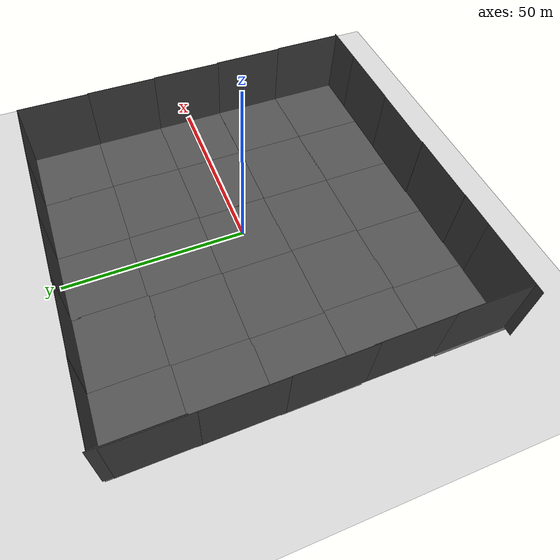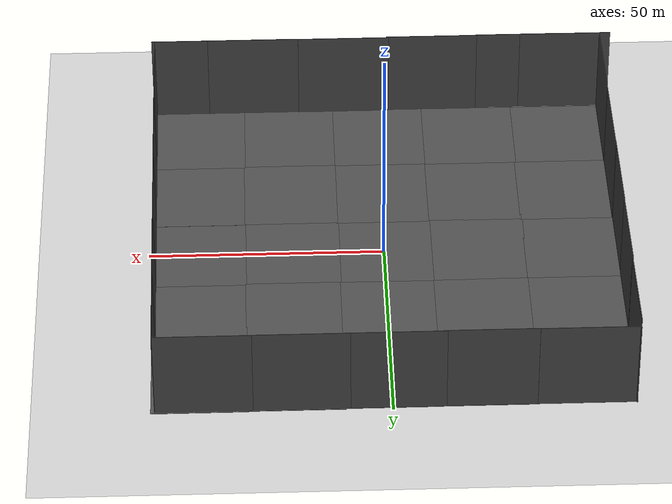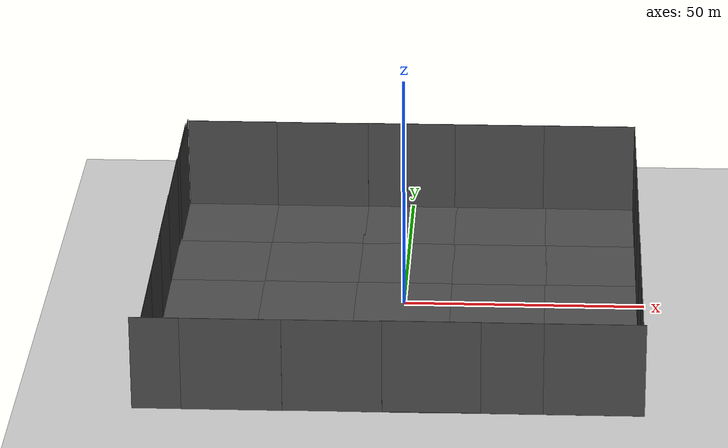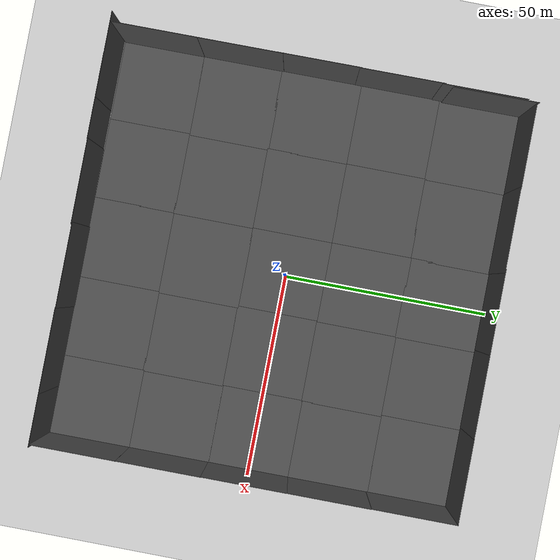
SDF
<sdf version="1.6">
 <world name="default">
  <light name="sun" type="directional">
   <pose>0 0 10000 0 -0 0</pose>
   <diffuse>0.8 0.8 0.8 1</diffuse>
   <specular>0.2 0.2 0.2 1</specular>
   <attenuation>
    <range>1000</range>
    <constant>0.9</constant>
    <linear>0.01</linear>
    <quadratic>0.001</quadratic>
   </attenuation>
   <direction>-0.5 0.1 -0.9</direction>
  </light>
  <model name="ground_plane">
   <static>1</static>
   <link name="link">
    <collision name="collision">
     <geometry><plane><normal>0 0 1</normal><size>100 100</size></plane></geometry>
     <surface><friction><ode><mu>100</mu><mu2>50</mu2></ode></friction></surface>
    </collision>
    <visual name="visual">
     <cast_shadows>0</cast_shadows>
     <geometry><plane><normal>0 0 1</normal><size>100 100</size></plane></geometry>
     <material>
      <script><uri>file://media/materials/scripts/gazebo.material</uri><name>Gazebo/Grey</name></script>
     </material>
    </visual>
   </link>
  </model>
  <gravity>0 0 -9.8</gravity>
  <magnetic_field>6e-06 2.3e-05 -4.2e-05</magnetic_field>
  <atmosphere type="adiabatic"/>
  <physics name="default_physics" default="0" type="ode">
   <max_step_size>0.001</max_step_size>
   <real_time_factor>1</real_time_factor>
   <real_time_update_rate>1000</real_time_update_rate>
  </physics>
  <scene><ambient>0.4 0.4 0.4 1</ambient><background>0.7 0.7 0.7 1</background><shadows>1</shadows></scene>
  <audio><device>default</device></audio>
  <spherical_coordinates>
   <surface_model>EARTH_WGS84</surface_model>
   <latitude_deg>0</latitude_deg>
   <longitude_deg>0</longitude_deg>
   <elevation>0</elevation>
   <heading_deg>0</heading_deg>
  </spherical_coordinates>
  <model name="asphalt_plane_clone_0">
   <static>1</static>
   <link name="link">
    <collision name="collision"><geometry><box><size>20 20 0.1</size></box></geometry></collision>
    <visual name="visual">
     <cast_shadows>0</cast_shadows>
     <geometry><box><size>20 20 0.1</size></box></geometry>
     <material>
      <script>
       <uri>model://asphalt_plane/materials/scripts</uri>
       <uri>model://asphalt_plane/materials/textures</uri>
       <name>vrc/asphalt</name>
      </script>
     </material>
    </visual>
   </link>
   <pose>-0.282441 39.4715 0 0 -0 0</pose>
  </model>
  <model name="asphalt_plane_clone_2">
   <static>1</static>
   <link name="link">
    <collision name="collision"><geometry><box><size>20 20 0.1</size></box></geometry></collision>
    <visual name="visual">
     <cast_shadows>0</cast_shadows>
     <geometry><box><size>20 20 0.1</size></box></geometry>
     <material>
      <script>
       <uri>model://asphalt_plane/materials/scripts</uri>
       <uri>model://asphalt_plane/materials/textures</uri>
       <name>vrc/asphalt</name>
      </script>
     </material>
    </visual>
   </link>
   <pose>-0.375855 -39.9407 0 0 -0 0</pose>
  </model>
  <model name="asphalt_plane_clone_2_clone">
   <static>1</static>
   <link name="link">
    <collision name="collision"><geometry><box><size>20 20 0.1</size></box></geometry></collision>
    <visual name="visual">
     <cast_shadows>0</cast_shadows>
     <geometry><box><size>20 20 0.1</size></box></geometry>
     <material>
      <script>
       <uri>model://asphalt_plane/materials/scripts</uri>
       <uri>model://asphalt_plane/materials/textures</uri>
       <name>vrc/asphalt</name>
      </script>
     </material>
    </visual>
   </link>
   <pose>-20.1781 -39.8377 0 0 -0 0</pose>
  </model>
  <model name="asphalt_plane_clone_2_clone_0">
   <static>1</static>
   <link name="link">
    <collision name="collision"><geometry><box><size>20 20 0.1</size></box></geometry></collision>
    <visual name="visual">
     <cast_shadows>0</cast_shadows>
     <geometry><box><size>20 20 0.1</size></box></geometry>
     <material>
      <script>
       <uri>model://asphalt_plane/materials/scripts</uri>
       <uri>model://asphalt_plane/materials/textures</uri>
       <name>vrc/asphalt</name>
      </script>
     </material>
    </visual>
   </link>
   <pose>-40.1007 -39.8 0 0 -0 0</pose>
  </model>
  <model name="asphalt_plane_clone_2_clone_1">
   <static>1</static>
   <link name="link">
    <collision name="collision"><geometry><box><size>20 20 0.1</size></box></geometry></collision>
    <visual name="visual">
     <cast_shadows>0</cast_shadows>
     <geometry><box><size>20 20 0.1</size></box></geometry>
     <material>
      <script>
       <uri>model://asphalt_plane/materials/scripts</uri>
       <uri>model://asphalt_plane/materials/textures</uri>
       <name>vrc/asphalt</name>
      </script>
     </material>
    </visual>
   </link>
   <pose>-20.0758 -20.1124 0 0 -0 0</pose>
  </model>
  <model name="asphalt_plane_clone_2_clone_2">
   <static>1</static>
   <link name="link">
    <collision name="collision"><geometry><box><size>20 20 0.1</size></box></geometry></collision>
    <visual name="visual">
     <cast_shadows>0</cast_shadows>
     <geometry><box><size>20 20 0.1</size></box></geometry>
     <material>
      <script>
       <uri>model://asphalt_plane/materials/scripts</uri>
       <uri>model://asphalt_plane/materials/textures</uri>
       <name>vrc/asphalt</name>
      </script>
     </material>
    </visual>
   </link>
   <pose>-39.8234 -19.9189 0 0 -0 0</pose>
  </model>
  <model name="asphalt_plane_clone_2_clone_3">
   <static>1</static>
   <link name="link">
    <collision name="collision"><geometry><box><size>20 20 0.1</size></box></geometry></collision>
    <visual name="visual">
     <cast_shadows>0</cast_shadows>
     <geometry><box><size>20 20 0.1</size></box></geometry>
     <material>
      <script>
       <uri>model://asphalt_plane/materials/scripts</uri>
       <uri>model://asphalt_plane/materials/textures</uri>
       <name>vrc/asphalt</name>
      </script>
     </material>
    </visual>
   </link>
   <pose>-40.0241 -0.322205 0 0 -0 0</pose>
  </model>
  <model name="asphalt_plane_clone_2_clone_4">
   <static>1</static>
   <link name="link">
    <collision name="collision"><geometry><box><size>20 20 0.1</size></box></geometry></collision>
    <visual name="visual">
     <cast_shadows>0</cast_shadows>
     <geometry><box><size>20 20 0.1</size></box></geometry>
     <material>
      <script>
       <uri>model://asphalt_plane/materials/scripts</uri>
       <uri>model://asphalt_plane/materials/textures</uri>
       <name>vrc/asphalt</name>
      </script>
     </material>
    </visual>
   </link>
   <pose>-20.2501 -0.22602 0 0 -0 0</pose>
  </model>
  <model name="asphalt_plane_clone_2_clone_5">
   <static>1</static>
   <link name="link">
    <collision name="collision"><geometry><box><size>20 20 0.1</size></box></geometry></collision>
    <visual name="visual">
     <cast_shadows>0</cast_shadows>
     <geometry><box><size>20 20 0.1</size></box></geometry>
     <material>
      <script>
       <uri>model://asphalt_plane/materials/scripts</uri>
       <uri>model://asphalt_plane/materials/textures</uri>
       <name>vrc/asphalt</name>
      </script>
     </material>
    </visual>
   </link>
   <pose>-20.1297 19.6688 0 0 -0 0</pose>
  </model>
  <model name="asphalt_plane_clone_2_clone_6">
   <static>1</static>
   <link name="link">
    <collision name="collision"><geometry><box><size>20 20 0.1</size></box></geometry></collision>
    <visual name="visual">
     <cast_shadows>0</cast_shadows>
     <geometry><box><size>20 20 0.1</size></box></geometry>
     <material>
      <script>
       <uri>model://asphalt_plane/materials/scripts</uri>
       <uri>model://asphalt_plane/materials/textures</uri>
       <name>vrc/asphalt</name>
      </script>
     </material>
    </visual>
   </link>
   <pose>-39.9185 19.4311 0 0 -0 0</pose>
  </model>
  <model name="asphalt_plane_clone_2_clone_7">
   <static>1</static>
   <link name="link">
    <collision name="collision"><geometry><box><size>20 20 0.1</size></box></geometry></collision>
    <visual name="visual">
     <cast_shadows>0</cast_shadows>
     <geometry><box><size>20 20 0.1</size></box></geometry>
     <material>
      <script>
       <uri>model://asphalt_plane/materials/scripts</uri>
       <uri>model://asphalt_plane/materials/textures</uri>
       <name>vrc/asphalt</name>
      </script>
     </material>
    </visual>
   </link>
   <pose>-39.8198 39.3396 0 0 -0 0</pose>
  </model>
  <model name="asphalt_plane_clone_2_clone_8">
   <static>1</static>
   <link name="link">
    <collision name="collision"><geometry><box><size>20 20 0.1</size></box></geometry></collision>
    <visual name="visual">
     <cast_shadows>0</cast_shadows>
     <geometry><box><size>20 20 0.1</size></box></geometry>
     <material>
      <script>
       <uri>model://asphalt_plane/materials/scripts</uri>
       <uri>model://asphalt_plane/materials/textures</uri>
       <name>vrc/asphalt</name>
      </script>
     </material>
    </visual>
   </link>
   <pose>-19.8747 39.4184 0 0 -0 0</pose>
  </model>
  <model name="asphalt_plane_clone_2_clone_9">
   <static>1</static>
   <link name="link">
    <collision name="collision"><geometry><box><size>20 20 0.1</size></box></geometry></collision>
    <visual name="visual">
     <cast_shadows>0</cast_shadows>
     <geometry><box><size>20 20 0.1</size></box></geometry>
     <material>
      <script>
       <uri>model://asphalt_plane/materials/scripts</uri>
       <uri>model://asphalt_plane/materials/textures</uri>
       <name>vrc/asphalt</name>
      </script>
     </material>
    </visual>
   </link>
   <pose>19.5852 -39.835 0 0 -0 0</pose>
  </model>
  <model name="asphalt_plane_clone_2_clone_10">
   <static>1</static>
   <link name="link">
    <collision name="collision"><geometry><box><size>20 20 0.1</size></box></geometry></collision>
    <visual name="visual">
     <cast_shadows>0</cast_shadows>
     <geometry><box><size>20 20 0.1</size></box></geometry>
     <material>
      <script>
       <uri>model://asphalt_plane/materials/scripts</uri>
       <uri>model://asphalt_plane/materials/textures</uri>
       <name>vrc/asphalt</name>
      </script>
     </material>
    </visual>
   </link>
   <pose>19.5555 -20.104 0 0 -0 0</pose>
  </model>
  <model name="asphalt_plane_clone_2_clone_11">
   <static>1</static>
   <link name="link">
    <collision name="collision"><geometry><box><size>20 20 0.1</size></box></geometry></collision>
    <visual name="visual">
     <cast_shadows>0</cast_shadows>
     <geometry><box><size>20 20 0.1</size></box></geometry>
     <material>
      <script>
       <uri>model://asphalt_plane/materials/scripts</uri>
       <uri>model://asphalt_plane/materials/textures</uri>
       <name>vrc/asphalt</name>
      </script>
     </material>
    </visual>
   </link>
   <pose>19.3785 -0.183989 0 0 -0 0</pose>
  </model>
  <model name="asphalt_plane_clone_2_clone_12">
   <static>1</static>
   <link name="link">
    <collision name="collision"><geometry><box><size>20 20 0.1</size></box></geometry></collision>
    <visual name="visual">
     <cast_shadows>0</cast_shadows>
     <geometry><box><size>20 20 0.1</size></box></geometry>
     <material>
      <script>
       <uri>model://asphalt_plane/materials/scripts</uri>
       <uri>model://asphalt_plane/materials/textures</uri>
       <name>vrc/asphalt</name>
      </script>
     </material>
    </visual>
   </link>
   <pose>19.5867 19.6998 0 0 -0 0</pose>
  </model>
  <model name="asphalt_plane_clone_2_clone_13">
   <static>1</static>
   <link name="link">
    <collision name="collision"><geometry><box><size>20 20 0.1</size></box></geometry></collision>
    <visual name="visual">
     <cast_shadows>0</cast_shadows>
     <geometry><box><size>20 20 0.1</size></box></geometry>
     <material>
      <script>
       <uri>model://asphalt_plane/materials/scripts</uri>
       <uri>model://asphalt_plane/materials/textures</uri>
       <name>vrc/asphalt</name>
      </script>
     </material>
    </visual>
   </link>
   <pose>19.4679 39.6646 0 0 -0 0</pose>
  </model>
  <model name="asphalt_plane_clone_2_clone_14">
   <static>1</static>
   <link name="link">
    <collision name="collision"><geometry><box><size>20 20 0.1</size></box></geometry></collision>
    <visual name="visual">
     <cast_shadows>0</cast_shadows>
     <geometry><box><size>20 20 0.1</size></box></geometry>
     <material>
      <script>
       <uri>model://asphalt_plane/materials/scripts</uri>
       <uri>model://asphalt_plane/materials/textures</uri>
       <name>vrc/asphalt</name>
      </script>
     </material>
    </visual>
   </link>
   <pose>39.1794 39.7774 0 0 -0 0</pose>
  </model>
  <model name="asphalt_plane_clone_2_clone_15">
   <static>1</static>
   <link name="link">
    <collision name="collision"><geometry><box><size>20 20 0.1</size></box></geometry></collision>
    <visual name="visual">
     <cast_shadows>0</cast_shadows>
     <geometry><box><size>20 20 0.1</size></box></geometry>
     <material>
      <script>
       <uri>model://asphalt_plane/materials/scripts</uri>
       <uri>model://asphalt_plane/materials/textures</uri>
       <name>vrc/asphalt</name>
      </script>
     </material>
    </visual>
   </link>
   <pose>39.402 19.8994 0 0 -0 0</pose>
  </model>
  <model name="asphalt_plane_clone_2_clone_16">
   <static>1</static>
   <link name="link">
    <collision name="collision"><geometry><box><size>20 20 0.1</size></box></geometry></collision>
    <visual name="visual">
     <cast_shadows>0</cast_shadows>
     <geometry><box><size>20 20 0.1</size></box></geometry>
     <material>
      <script>
       <uri>model://asphalt_plane/materials/scripts</uri>
       <uri>model://asphalt_plane/materials/textures</uri>
       <name>vrc/asphalt</name>
      </script>
     </material>
    </visual>
   </link>
   <pose>39.307 0.067788 0 0 -0 0</pose>
  </model>
  <model name="asphalt_plane_clone_2_clone_17">
   <static>1</static>
   <link name="link">
    <collision name="collision"><geometry><box><size>20 20 0.1</size></box></geometry></collision>
    <visual name="visual">
     <cast_shadows>0</cast_shadows>
     <geometry><box><size>20 20 0.1</size></box></geometry>
     <material>
      <script>
       <uri>model://asphalt_plane/materials/scripts</uri>
       <uri>model://asphalt_plane/materials/textures</uri>
       <name>vrc/asphalt</name>
      </script>
     </material>
    </visual>
   </link>
   <pose>39.3062 -19.9491 0 0 -0 0</pose>
  </model>
  <model name="asphalt_plane_clone_2_clone_18">
   <static>1</static>
   <link name="link">
    <collision name="collision"><geometry><box><size>20 20 0.1</size></box></geometry></collision>
    <visual name="visual">
     <cast_shadows>0</cast_shadows>
     <geometry><box><size>20 20 0.1</size></box></geometry>
     <material>
      <script>
       <uri>model://asphalt_plane/materials/scripts</uri>
       <uri>model://asphalt_plane/materials/textures</uri>
       <name>vrc/asphalt</name>
      </script>
     </material>
    </visual>
   </link>
   <pose>39.3188 -39.8411 0 0 -0 0</pose>
  </model>
  <plugin name="collision_map_creator" filename="libcollision_map_creator.so"/>
  <model name="asphalt_plane">
   <static>1</static>
   <link name="link">
    <collision name="collision"><geometry><box><size>20 20 0.1</size></box></geometry></collision>
    <visual name="visual">
     <cast_shadows>0</cast_shadows>
     <geometry><box><size>20 20 0.1</size></box></geometry>
     <material>
      <script>
       <uri>model://asphalt_plane/materials/scripts</uri>
       <uri>model://asphalt_plane/materials/textures</uri>
       <name>vrc/asphalt</name>
      </script>
     </material>
    </visual>
   </link>
   <pose>-0.302274 -0.132083 0 0 -0 0</pose>
  </model>
  <model name="asphalt_plane_0">
   <static>1</static>
   <link name="link">
    <collision name="collision"><geometry><box><size>20 20 0.1</size></box></geometry></collision>
    <visual name="visual">
     <cast_shadows>0</cast_shadows>
     <geometry><box><size>20 20 0.1</size></box></geometry>
     <material>
      <script>
       <uri>model://asphalt_plane/materials/scripts</uri>
       <uri>model://asphalt_plane/materials/textures</uri>
       <name>vrc/asphalt</name>
      </script>
     </material>
    </visual>
   </link>
   <pose>-0.27586 19.8027 0 0 -0 0</pose>
  </model>
  <model name="asphalt_plane_1">
   <static>1</static>
   <link name="link">
    <collision name="collision"><geometry><box><size>20 20 0.1</size></box></geometry></collision>
    <visual name="visual">
     <cast_shadows>0</cast_shadows>
     <geometry><box><size>20 20 0.1</size></box></geometry>
     <material>
      <script>
       <uri>model://asphalt_plane/materials/scripts</uri>
       <uri>model://asphalt_plane/materials/textures</uri>
       <name>vrc/asphalt</name>
      </script>
     </material>
    </visual>
   </link>
   <pose>-0.084848 -19.9503 0 0 -0 0</pose>
  </model>
  <model name="asphalt_plane_2">
   <static>1</static>
   <link name="link">
    <collision name="collision"><geometry><box><size>20 20 0.1</size></box></geometry></collision>
    <visual name="visual">
     <cast_shadows>0</cast_shadows>
     <geometry><box><size>20 20 0.1</size></box></geometry>
     <material>
      <script>
       <uri>model://asphalt_plane/materials/scripts</uri>
       <uri>model://asphalt_plane/materials/textures</uri>
       <name>vrc/asphalt</name>
      </script>
     </material>
    </visual>
   </link>
   <pose>-12.3513 -50.029 9.98458 -1.56004 0 0</pose>
  </model>
  <model name="asphalt_plane_2_clone">
   <static>1</static>
   <link name="link">
    <collision name="collision"><geometry><box><size>20 20 0.1</size></box></geometry></collision>
    <visual name="visual">
     <cast_shadows>0</cast_shadows>
     <geometry><box><size>20 20 0.1</size></box></geometry>
     <material>
      <script>
       <uri>model://asphalt_plane/materials/scripts</uri>
       <uri>model://asphalt_plane/materials/textures</uri>
       <name>vrc/asphalt</name>
      </script>
     </material>
    </visual>
   </link>
   <pose>7.1443 -49.8263 9.98458 -1.56004 0 0</pose>
  </model>
  <model name="asphalt_plane_2_clone_0">
   <static>1</static>
   <link name="link">
    <collision name="collision"><geometry><box><size>20 20 0.1</size></box></geometry></collision>
    <visual name="visual">
     <cast_shadows>0</cast_shadows>
     <geometry><box><size>20 20 0.1</size></box></geometry>
     <material>
      <script>
       <uri>model://asphalt_plane/materials/scripts</uri>
       <uri>model://asphalt_plane/materials/textures</uri>
       <name>vrc/asphalt</name>
      </script>
     </material>
    </visual>
   </link>
   <pose>27.071 -49.9158 9.98458 -1.56004 0 0</pose>
  </model>
  <model name="asphalt_plane_2_clone_1">
   <static>1</static>
   <link name="link">
    <collision name="collision"><geometry><box><size>20 20 0.1</size></box></geometry></collision>
    <visual name="visual">
     <cast_shadows>0</cast_shadows>
     <geometry><box><size>20 20 0.1</size></box></geometry>
     <material>
      <script>
       <uri>model://asphalt_plane/materials/scripts</uri>
       <uri>model://asphalt_plane/materials/textures</uri>
       <name>vrc/asphalt</name>
      </script>
     </material>
    </visual>
   </link>
   <pose>39.3994 -49.9205 9.98458 -1.56004 0 0</pose>
  </model>
  <model name="asphalt_plane_2_clone_2">
   <static>1</static>
   <link name="link">
    <collision name="collision"><geometry><box><size>20 20 0.1</size></box></geometry></collision>
    <visual name="visual">
     <cast_shadows>0</cast_shadows>
     <geometry><box><size>20 20 0.1</size></box></geometry>
     <material>
      <script>
       <uri>model://asphalt_plane/materials/scripts</uri>
       <uri>model://asphalt_plane/materials/textures</uri>
       <name>vrc/asphalt</name>
      </script>
     </material>
    </visual>
   </link>
   <pose>-32.0934 -50.1247 9.98458 -1.56004 0 0</pose>
  </model>
  <model name="asphalt_plane_2_clone_3">
   <static>1</static>
   <link name="link">
    <collision name="collision"><geometry><box><size>20 20 0.1</size></box></geometry></collision>
    <visual name="visual">
     <cast_shadows>0</cast_shadows>
     <geometry><box><size>20 20 0.1</size></box></geometry>
     <material>
      <script>
       <uri>model://asphalt_plane/materials/scripts</uri>
       <uri>model://asphalt_plane/materials/textures</uri>
       <name>vrc/asphalt</name>
      </script>
     </material>
    </visual>
   </link>
   <pose>-41.9076 -50.0904 9.98458 -1.56004 0 0</pose>
  </model>
  <model name="asphalt_plane_2_clone_4">
   <static>1</static>
   <link name="link">
    <collision name="collision"><geometry><box><size>20 20 0.1</size></box></geometry></collision>
    <visual name="visual">
     <cast_shadows>0</cast_shadows>
     <geometry><box><size>20 20 0.1</size></box></geometry>
     <material>
      <script>
       <uri>model://asphalt_plane/materials/scripts</uri>
       <uri>model://asphalt_plane/materials/textures</uri>
       <name>vrc/asphalt</name>
      </script>
     </material>
    </visual>
   </link>
   <pose>-39.4031 49.1987 9.98458 -1.56004 0 0</pose>
  </model>
  <model name="asphalt_plane_2_clone_5">
   <static>1</static>
   <link name="link">
    <collision name="collision"><geometry><box><size>20 20 0.1</size></box></geometry></collision>
    <visual name="visual">
     <cast_shadows>0</cast_shadows>
     <geometry><box><size>20 20 0.1</size></box></geometry>
     <material>
      <script>
       <uri>model://asphalt_plane/materials/scripts</uri>
       <uri>model://asphalt_plane/materials/textures</uri>
       <name>vrc/asphalt</name>
      </script>
     </material>
    </visual>
   </link>
   <pose>-19.9737 49.1336 9.98458 -1.56004 0 0</pose>
  </model>
  <model name="asphalt_plane_2_clone_6">
   <static>1</static>
   <link name="link">
    <collision name="collision"><geometry><box><size>20 20 0.1</size></box></geometry></collision>
    <visual name="visual">
     <cast_shadows>0</cast_shadows>
     <geometry><box><size>20 20 0.1</size></box></geometry>
     <material>
      <script>
       <uri>model://asphalt_plane/materials/scripts</uri>
       <uri>model://asphalt_plane/materials/textures</uri>
       <name>vrc/asphalt</name>
      </script>
     </material>
    </visual>
   </link>
   <pose>-0.885263 49.257 9.98458 -1.56004 0 0</pose>
  </model>
  <model name="asphalt_plane_2_clone_7">
   <static>1</static>
   <link name="link">
    <collision name="collision"><geometry><box><size>20 20 0.1</size></box></geometry></collision>
    <visual name="visual">
     <cast_shadows>0</cast_shadows>
     <geometry><box><size>20 20 0.1</size></box></geometry>
     <material>
      <script>
       <uri>model://asphalt_plane/materials/scripts</uri>
       <uri>model://asphalt_plane/materials/textures</uri>
       <name>vrc/asphalt</name>
      </script>
     </material>
    </visual>
   </link>
   <pose>18.5742 49.2675 9.98458 -1.56004 0 0</pose>
  </model>
  <model name="asphalt_plane_2_clone_8">
   <static>1</static>
   <link name="link">
    <collision name="collision"><geometry><box><size>20 20 0.1</size></box></geometry></collision>
    <visual name="visual">
     <cast_shadows>0</cast_shadows>
     <geometry><box><size>20 20 0.1</size></box></geometry>
     <material>
      <script>
       <uri>model://asphalt_plane/materials/scripts</uri>
       <uri>model://asphalt_plane/materials/textures</uri>
       <name>vrc/asphalt</name>
      </script>
     </material>
    </visual>
   </link>
   <pose>38.348 49.3053 9.98458 -1.56004 0 0</pose>
  </model>
  <model name="asphalt_plane_2_clone_9">
   <static>1</static>
   <link name="link">
    <collision name="collision"><geometry><box><size>20 20 0.1</size></box></geometry></collision>
    <visual name="visual">
     <cast_shadows>0</cast_shadows>
     <geometry><box><size>20 20 0.1</size></box></geometry>
     <material>
      <script>
       <uri>model://asphalt_plane/materials/scripts</uri>
       <uri>model://asphalt_plane/materials/textures</uri>
       <name>vrc/asphalt</name>
      </script>
     </material>
    </visual>
   </link>
   <pose>48.3858 39.3566 9.98458 -1.57084 -0.010756 1.57451</pose>
  </model>
  <model name="asphalt_plane_2_clone_9_clone">
   <static>1</static>
   <link name="link">
    <collision name="collision"><geometry><box><size>20 20 0.1</size></box></geometry></collision>
    <visual name="visual">
     <cast_shadows>0</cast_shadows>
     <geometry><box><size>20 20 0.1</size></box></geometry>
     <material>
      <script>
       <uri>model://asphalt_plane/materials/scripts</uri>
       <uri>model://asphalt_plane/materials/textures</uri>
       <name>vrc/asphalt</name>
      </script>
     </material>
    </visual>
   </link>
   <pose>48.4852 19.515 9.98458 -1.57084 -0.010756 1.57451</pose>
  </model>
  <model name="asphalt_plane_2_clone_9_clone_0">
   <static>1</static>
   <link name="link">
    <collision name="collision"><geometry><box><size>20 20 0.1</size></box></geometry></collision>
    <visual name="visual">
     <cast_shadows>0</cast_shadows>
     <geometry><box><size>20 20 0.1</size></box></geometry>
     <material>
      <script>
       <uri>model://asphalt_plane/materials/scripts</uri>
       <uri>model://asphalt_plane/materials/textures</uri>
       <name>vrc/asphalt</name>
      </script>
     </material>
    </visual>
   </link>
   <pose>48.5476 -0.206756 9.98458 -1.57084 -0.010756 1.57451</pose>
  </model>
  <model name="asphalt_plane_2_clone_9_clone_1">
   <static>1</static>
   <link name="link">
    <collision name="collision"><geometry><box><size>20 20 0.1</size></box></geometry></collision>
    <visual name="visual">
     <cast_shadows>0</cast_shadows>
     <geometry><box><size>20 20 0.1</size></box></geometry>
     <material>
      <script>
       <uri>model://asphalt_plane/materials/scripts</uri>
       <uri>model://asphalt_plane/materials/textures</uri>
       <name>vrc/asphalt</name>
      </script>
     </material>
    </visual>
   </link>
   <pose>48.6424 -19.8839 9.98458 -1.57084 -0.010756 1.57451</pose>
  </model>
  <model name="asphalt_plane_2_clone_9_clone_2">
   <static>1</static>
   <link name="link">
    <collision name="collision"><geometry><box><size>20 20 0.1</size></box></geometry></collision>
    <visual name="visual">
     <cast_shadows>0</cast_shadows>
     <geometry><box><size>20 20 0.1</size></box></geometry>
     <material>
      <script>
       <uri>model://asphalt_plane/materials/scripts</uri>
       <uri>model://asphalt_plane/materials/textures</uri>
       <name>vrc/asphalt</name>
      </script>
     </material>
    </visual>
   </link>
   <pose>48.7094 -39.8988 9.98458 -1.57084 -0.010756 1.57451</pose>
  </model>
  <model name="asphalt_plane_2_clone_9_clone_3">
   <static>1</static>
   <link name="link">
    <collision name="collision"><geometry><box><size>20 20 0.1</size></box></geometry></collision>
    <visual name="visual">
     <cast_shadows>0</cast_shadows>
     <geometry><box><size>20 20 0.1</size></box></geometry>
     <material>
      <script>
       <uri>model://asphalt_plane/materials/scripts</uri>
       <uri>model://asphalt_plane/materials/textures</uri>
       <name>vrc/asphalt</name>
      </script>
     </material>
    </visual>
   </link>
   <pose>-49.5431 -39.8877 9.98458 -1.57084 -0.010756 1.57451</pose>
  </model>
  <model name="asphalt_plane_2_clone_9_clone_4">
   <static>1</static>
   <link name="link">
    <collision name="collision"><geometry><box><size>20 20 0.1</size></box></geometry></collision>
    <visual name="visual">
     <cast_shadows>0</cast_shadows>
     <geometry><box><size>20 20 0.1</size></box></geometry>
     <material>
      <script>
       <uri>model://asphalt_plane/materials/scripts</uri>
       <uri>model://asphalt_plane/materials/textures</uri>
       <name>vrc/asphalt</name>
      </script>
     </material>
    </visual>
   </link>
   <pose>-49.6574 -19.9459 9.98458 -1.57084 -0.010756 1.57451</pose>
  </model>
  <model name="asphalt_plane_2_clone_9_clone_5">
   <static>1</static>
   <link name="link">
    <collision name="collision"><geometry><box><size>20 20 0.1</size></box></geometry></collision>
    <visual name="visual">
     <cast_shadows>0</cast_shadows>
     <geometry><box><size>20 20 0.1</size></box></geometry>
     <material>
      <script>
       <uri>model://asphalt_plane/materials/scripts</uri>
       <uri>model://asphalt_plane/materials/textures</uri>
       <name>vrc/asphalt</name>
      </script>
     </material>
    </visual>
   </link>
   <pose>-49.7977 -1.63677 9.98458 -1.57084 -0.010756 1.57451</pose>
  </model>
  <model name="asphalt_plane_2_clone_9_clone_6">
   <static>1</static>
   <link name="link">
    <collision name="collision"><geometry><box><size>20 20 0.1</size></box></geometry></collision>
    <visual name="visual">
     <cast_shadows>0</cast_shadows>
     <geometry><box><size>20 20 0.1</size></box></geometry>
     <material>
      <script>
       <uri>model://asphalt_plane/materials/scripts</uri>
       <uri>model://asphalt_plane/materials/textures</uri>
       <name>vrc/asphalt</name>
      </script>
     </material>
    </visual>
   </link>
   <pose>-49.8378 17.9548 9.98458 -1.57084 -0.010756 1.57451</pose>
  </model>
  <model name="asphalt_plane_2_clone_9_clone_7">
   <static>1</static>
   <link name="link">
    <collision name="collision"><geometry><box><size>20 20 0.1</size></box></geometry></collision>
    <visual name="visual">
     <cast_shadows>0</cast_shadows>
     <geometry><box><size>20 20 0.1</size></box></geometry>
     <material>
      <script>
       <uri>model://asphalt_plane/materials/scripts</uri>
       <uri>model://asphalt_plane/materials/textures</uri>
       <name>vrc/asphalt</name>
      </script>
     </material>
    </visual>
   </link>
   <pose>-49.8151 37.2283 9.98458 -1.57084 -0.010756 1.57451</pose>
  </model>
  <model name="asphalt_plane_2_clone_9_clone_8">
   <static>1</static>
   <link name="link">
    <collision name="collision"><geometry><box><size>20 20 0.1</size></box></geometry></collision>
    <visual name="visual">
     <cast_shadows>0</cast_shadows>
     <geometry><box><size>20 20 0.1</size></box></geometry>
     <material>
      <script>
       <uri>model://asphalt_plane/materials/scripts</uri>
       <uri>model://asphalt_plane/materials/textures</uri>
       <name>vrc/asphalt</name>
      </script>
     </material>
    </visual>
   </link>
   <pose>-49.5386 39.7395 9.98458 -1.57084 -0.010756 1.57451</pose>
  </model>
 </world>
</sdf>
